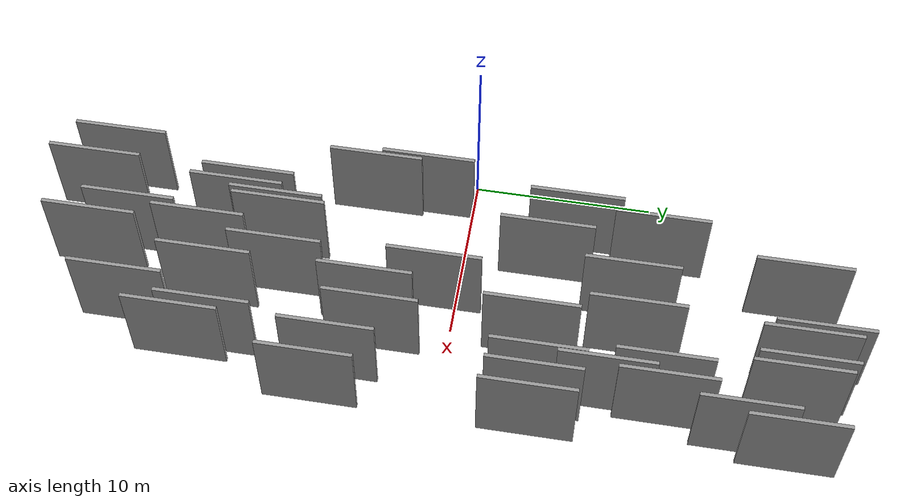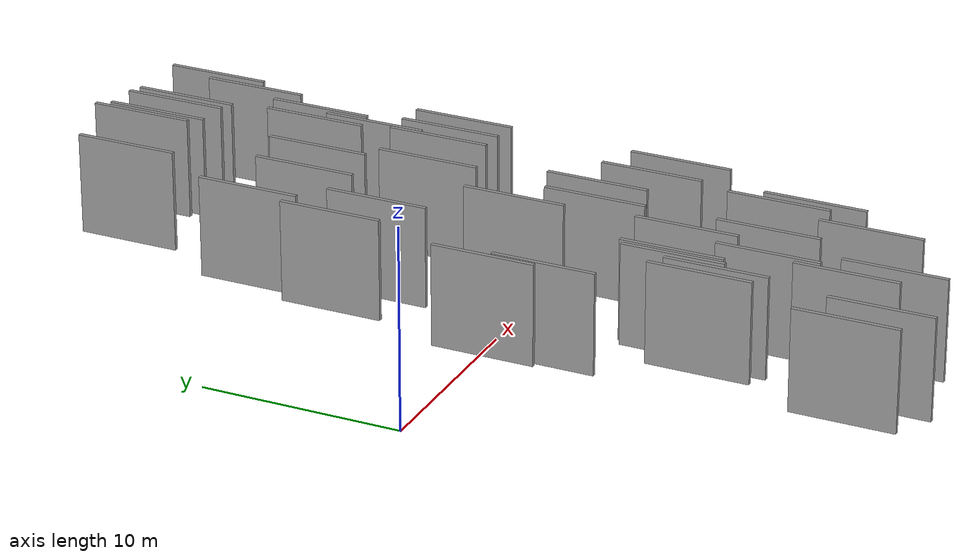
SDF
<sdf version="1.6">
 <world name="default">
  <scene>
   <sky><clouds><speed>12</speed></clouds></sky>
   <ambient>0.4 0.4 0.4 1</ambient>
   <background>0.7 0.7 0.7 1</background>
   <shadows>1</shadows>
  </scene>
  <gravity>0 0 -9.8066</gravity>
  <magnetic_field>6e-06 2.3e-05 -4.2e-05</magnetic_field>
  <physics default="0" name="default_physics" type="ode">
   <ode>
    <solver>
     <type>quick</type>
     <iters>10</iters>
     <sor>1.0</sor>
     <use_dynamic_moi_rescaling>0</use_dynamic_moi_rescaling>
    </solver>
    <constraints>
     <cfm>0</cfm>
     <erp>0.2</erp>
     <contact_max_correcting_vel>100</contact_max_correcting_vel>
     <contact_surface_layer>0.001</contact_surface_layer>
    </constraints>
   </ode>
   <max_step_size>0.004</max_step_size>
   <real_time_factor>1</real_time_factor>
   <real_time_update_rate>250</real_time_update_rate>
  </physics>
  <light name="sun" type="directional">
   <pose>0 0 10 0 0 0</pose>
   <diffuse>0.8 0.8 0.8 1</diffuse>
   <specular>0.2 0.2 0.2 1</specular>
   <attenuation>
    <range>1000</range>
    <constant>0.9</constant>
    <linear>0.01</linear>
    <quadratic>0.001</quadratic>
   </attenuation>
   <direction>-0.5 0.1 -0.9</direction>
  </light>
  <model name="grey_wall_1">
   <static>1</static>
   <pose>5.8081 10.5907 2.5 0.000000 0.000000 1.570796</pose>
   <link name="link">
    <pose>0 0 2.50 0 0 0</pose>
    <collision name="collision"><geometry><box><size>5.00 0.2 5.00</size></box></geometry></collision>
    <visual name="visual">
     <cast_shadows>0</cast_shadows>
     <geometry><box><size>5.00 0.2 5.00</size></box></geometry>
     <material>
      <script>
       <uri>model://grey_wall/materials/scripts</uri>
       <uri>model://grey_wall/materials/textures</uri>
       <name>vrc/grey_wall</name>
      </script>
     </material>
    </visual>
   </link>
  </model>
  <model name="grey_wall_2">
   <static>1</static>
   <pose>11.6229 18.5707 2.5 0.000000 0.000000 1.570796</pose>
   <link name="link">
    <pose>0 0 2.50 0 0 0</pose>
    <collision name="collision"><geometry><box><size>5.00 0.2 5.00</size></box></geometry></collision>
    <visual name="visual">
     <cast_shadows>0</cast_shadows>
     <geometry><box><size>5.00 0.2 5.00</size></box></geometry>
     <material>
      <script>
       <uri>model://grey_wall/materials/scripts</uri>
       <uri>model://grey_wall/materials/textures</uri>
       <name>vrc/grey_wall</name>
      </script>
     </material>
    </visual>
   </link>
  </model>
  <model name="grey_wall_3">
   <static>1</static>
   <pose>10.0517 -0.8519 2.5 0.000000 0.000000 1.570796</pose>
   <link name="link">
    <pose>0 0 2.50 0 0 0</pose>
    <collision name="collision"><geometry><box><size>5.00 0.2 5.00</size></box></geometry></collision>
    <visual name="visual">
     <cast_shadows>0</cast_shadows>
     <geometry><box><size>5.00 0.2 5.00</size></box></geometry>
     <material>
      <script>
       <uri>model://grey_wall/materials/scripts</uri>
       <uri>model://grey_wall/materials/textures</uri>
       <name>vrc/grey_wall</name>
      </script>
     </material>
    </visual>
   </link>
  </model>
  <model name="grey_wall_4">
   <static>1</static>
   <pose>11.1998 19.1837 2.5 0.000000 0.000000 1.570796</pose>
   <link name="link">
    <pose>0 0 2.50 0 0 0</pose>
    <collision name="collision"><geometry><box><size>5.00 0.2 5.00</size></box></geometry></collision>
    <visual name="visual">
     <cast_shadows>0</cast_shadows>
     <geometry><box><size>5.00 0.2 5.00</size></box></geometry>
     <material>
      <script>
       <uri>model://grey_wall/materials/scripts</uri>
       <uri>model://grey_wall/materials/textures</uri>
       <name>vrc/grey_wall</name>
      </script>
     </material>
    </visual>
   </link>
  </model>
  <model name="grey_wall_5">
   <static>1</static>
   <pose>7.8874 -9.5599 2.5 0.000000 0.000000 1.570796</pose>
   <link name="link">
    <pose>0 0 2.50 0 0 0</pose>
    <collision name="collision"><geometry><box><size>5.00 0.2 5.00</size></box></geometry></collision>
    <visual name="visual">
     <cast_shadows>0</cast_shadows>
     <geometry><box><size>5.00 0.2 5.00</size></box></geometry>
     <material>
      <script>
       <uri>model://grey_wall/materials/scripts</uri>
       <uri>model://grey_wall/materials/textures</uri>
       <name>vrc/grey_wall</name>
      </script>
     </material>
    </visual>
   </link>
  </model>
  <model name="grey_wall_6">
   <static>1</static>
   <pose>11.2592 9.8154 2.5 0.000000 0.000000 1.570796</pose>
   <link name="link">
    <pose>0 0 2.50 0 0 0</pose>
    <collision name="collision"><geometry><box><size>5.00 0.2 5.00</size></box></geometry></collision>
    <visual name="visual">
     <cast_shadows>0</cast_shadows>
     <geometry><box><size>5.00 0.2 5.00</size></box></geometry>
     <material>
      <script>
       <uri>model://grey_wall/materials/scripts</uri>
       <uri>model://grey_wall/materials/textures</uri>
       <name>vrc/grey_wall</name>
      </script>
     </material>
    </visual>
   </link>
  </model>
  <model name="grey_wall_7">
   <static>1</static>
   <pose>4.1478 -5.0018 2.5 0.000000 0.000000 1.570796</pose>
   <link name="link">
    <pose>0 0 2.50 0 0 0</pose>
    <collision name="collision"><geometry><box><size>5.00 0.2 5.00</size></box></geometry></collision>
    <visual name="visual">
     <cast_shadows>0</cast_shadows>
     <geometry><box><size>5.00 0.2 5.00</size></box></geometry>
     <material>
      <script>
       <uri>model://grey_wall/materials/scripts</uri>
       <uri>model://grey_wall/materials/textures</uri>
       <name>vrc/grey_wall</name>
      </script>
     </material>
    </visual>
   </link>
  </model>
  <model name="grey_wall_8">
   <static>1</static>
   <pose>9.3452 -13.5568 2.5 0.000000 0.000000 1.570796</pose>
   <link name="link">
    <pose>0 0 2.50 0 0 0</pose>
    <collision name="collision"><geometry><box><size>5.00 0.2 5.00</size></box></geometry></collision>
    <visual name="visual">
     <cast_shadows>0</cast_shadows>
     <geometry><box><size>5.00 0.2 5.00</size></box></geometry>
     <material>
      <script>
       <uri>model://grey_wall/materials/scripts</uri>
       <uri>model://grey_wall/materials/textures</uri>
       <name>vrc/grey_wall</name>
      </script>
     </material>
    </visual>
   </link>
  </model>
  <model name="grey_wall_9">
   <static>1</static>
   <pose>3.8382 -2.2054 2.5 0.000000 0.000000 1.570796</pose>
   <link name="link">
    <pose>0 0 2.50 0 0 0</pose>
    <collision name="collision"><geometry><box><size>5.00 0.2 5.00</size></box></geometry></collision>
    <visual name="visual">
     <cast_shadows>0</cast_shadows>
     <geometry><box><size>5.00 0.2 5.00</size></box></geometry>
     <material>
      <script>
       <uri>model://grey_wall/materials/scripts</uri>
       <uri>model://grey_wall/materials/textures</uri>
       <name>vrc/grey_wall</name>
      </script>
     </material>
    </visual>
   </link>
  </model>
  <model name="grey_wall_10">
   <static>1</static>
   <pose>6.9938 -12.0329 2.5 0.000000 0.000000 1.570796</pose>
   <link name="link">
    <pose>0 0 2.50 0 0 0</pose>
    <collision name="collision"><geometry><box><size>5.00 0.2 5.00</size></box></geometry></collision>
    <visual name="visual">
     <cast_shadows>0</cast_shadows>
     <geometry><box><size>5.00 0.2 5.00</size></box></geometry>
     <material>
      <script>
       <uri>model://grey_wall/materials/scripts</uri>
       <uri>model://grey_wall/materials/textures</uri>
       <name>vrc/grey_wall</name>
      </script>
     </material>
    </visual>
   </link>
  </model>
  <model name="grey_wall_11">
   <static>1</static>
   <pose>10.1374 -19.2209 2.5 0.000000 0.000000 1.570796</pose>
   <link name="link">
    <pose>0 0 2.50 0 0 0</pose>
    <collision name="collision"><geometry><box><size>5.00 0.2 5.00</size></box></geometry></collision>
    <visual name="visual">
     <cast_shadows>0</cast_shadows>
     <geometry><box><size>5.00 0.2 5.00</size></box></geometry>
     <material>
      <script>
       <uri>model://grey_wall/materials/scripts</uri>
       <uri>model://grey_wall/materials/textures</uri>
       <name>vrc/grey_wall</name>
      </script>
     </material>
    </visual>
   </link>
  </model>
  <model name="grey_wall_12">
   <static>1</static>
   <pose>14.6214 -11.9846 2.5 0.000000 0.000000 1.570796</pose>
   <link name="link">
    <pose>0 0 2.50 0 0 0</pose>
    <collision name="collision"><geometry><box><size>5.00 0.2 5.00</size></box></geometry></collision>
    <visual name="visual">
     <cast_shadows>0</cast_shadows>
     <geometry><box><size>5.00 0.2 5.00</size></box></geometry>
     <material>
      <script>
       <uri>model://grey_wall/materials/scripts</uri>
       <uri>model://grey_wall/materials/textures</uri>
       <name>vrc/grey_wall</name>
      </script>
     </material>
    </visual>
   </link>
  </model>
  <model name="grey_wall_13">
   <static>1</static>
   <pose>8.9719 9.3235 2.5 0.000000 0.000000 1.570796</pose>
   <link name="link">
    <pose>0 0 2.50 0 0 0</pose>
    <collision name="collision"><geometry><box><size>5.00 0.2 5.00</size></box></geometry></collision>
    <visual name="visual">
     <cast_shadows>0</cast_shadows>
     <geometry><box><size>5.00 0.2 5.00</size></box></geometry>
     <material>
      <script>
       <uri>model://grey_wall/materials/scripts</uri>
       <uri>model://grey_wall/materials/textures</uri>
       <name>vrc/grey_wall</name>
      </script>
     </material>
    </visual>
   </link>
  </model>
  <model name="grey_wall_14">
   <static>1</static>
   <pose>10.3752 -9.2281 2.5 0.000000 0.000000 1.570796</pose>
   <link name="link">
    <pose>0 0 2.50 0 0 0</pose>
    <collision name="collision"><geometry><box><size>5.00 0.2 5.00</size></box></geometry></collision>
    <visual name="visual">
     <cast_shadows>0</cast_shadows>
     <geometry><box><size>5.00 0.2 5.00</size></box></geometry>
     <material>
      <script>
       <uri>model://grey_wall/materials/scripts</uri>
       <uri>model://grey_wall/materials/textures</uri>
       <name>vrc/grey_wall</name>
      </script>
     </material>
    </visual>
   </link>
  </model>
  <model name="grey_wall_15">
   <static>1</static>
   <pose>13.7497 18.1765 2.5 0.000000 0.000000 1.570796</pose>
   <link name="link">
    <pose>0 0 2.50 0 0 0</pose>
    <collision name="collision"><geometry><box><size>5.00 0.2 5.00</size></box></geometry></collision>
    <visual name="visual">
     <cast_shadows>0</cast_shadows>
     <geometry><box><size>5.00 0.2 5.00</size></box></geometry>
     <material>
      <script>
       <uri>model://grey_wall/materials/scripts</uri>
       <uri>model://grey_wall/materials/textures</uri>
       <name>vrc/grey_wall</name>
      </script>
     </material>
    </visual>
   </link>
  </model>
  <model name="grey_wall_16">
   <static>1</static>
   <pose>4.6476 -19.0045 2.5 0.000000 0.000000 1.570796</pose>
   <link name="link">
    <pose>0 0 2.50 0 0 0</pose>
    <collision name="collision"><geometry><box><size>5.00 0.2 5.00</size></box></geometry></collision>
    <visual name="visual">
     <cast_shadows>0</cast_shadows>
     <geometry><box><size>5.00 0.2 5.00</size></box></geometry>
     <material>
      <script>
       <uri>model://grey_wall/materials/scripts</uri>
       <uri>model://grey_wall/materials/textures</uri>
       <name>vrc/grey_wall</name>
      </script>
     </material>
    </visual>
   </link>
  </model>
  <model name="grey_wall_17">
   <static>1</static>
   <pose>8.9086 -17.4246 2.5 0.000000 0.000000 1.570796</pose>
   <link name="link">
    <pose>0 0 2.50 0 0 0</pose>
    <collision name="collision"><geometry><box><size>5.00 0.2 5.00</size></box></geometry></collision>
    <visual name="visual">
     <cast_shadows>0</cast_shadows>
     <geometry><box><size>5.00 0.2 5.00</size></box></geometry>
     <material>
      <script>
       <uri>model://grey_wall/materials/scripts</uri>
       <uri>model://grey_wall/materials/textures</uri>
       <name>vrc/grey_wall</name>
      </script>
     </material>
    </visual>
   </link>
  </model>
  <model name="grey_wall_18">
   <static>1</static>
   <pose>6.2576 -11.5523 2.5 0.000000 0.000000 1.570796</pose>
   <link name="link">
    <pose>0 0 2.50 0 0 0</pose>
    <collision name="collision"><geometry><box><size>5.00 0.2 5.00</size></box></geometry></collision>
    <visual name="visual">
     <cast_shadows>0</cast_shadows>
     <geometry><box><size>5.00 0.2 5.00</size></box></geometry>
     <material>
      <script>
       <uri>model://grey_wall/materials/scripts</uri>
       <uri>model://grey_wall/materials/textures</uri>
       <name>vrc/grey_wall</name>
      </script>
     </material>
    </visual>
   </link>
  </model>
  <model name="grey_wall_19">
   <static>1</static>
   <pose>11.5374 -4.2189 2.5 0.000000 0.000000 1.570796</pose>
   <link name="link">
    <pose>0 0 2.50 0 0 0</pose>
    <collision name="collision"><geometry><box><size>5.00 0.2 5.00</size></box></geometry></collision>
    <visual name="visual">
     <cast_shadows>0</cast_shadows>
     <geometry><box><size>5.00 0.2 5.00</size></box></geometry>
     <material>
      <script>
       <uri>model://grey_wall/materials/scripts</uri>
       <uri>model://grey_wall/materials/textures</uri>
       <name>vrc/grey_wall</name>
      </script>
     </material>
    </visual>
   </link>
  </model>
  <model name="grey_wall_20">
   <static>1</static>
   <pose>13.1738 18.4519 2.5 0.000000 0.000000 1.570796</pose>
   <link name="link">
    <pose>0 0 2.50 0 0 0</pose>
    <collision name="collision"><geometry><box><size>5.00 0.2 5.00</size></box></geometry></collision>
    <visual name="visual">
     <cast_shadows>0</cast_shadows>
     <geometry><box><size>5.00 0.2 5.00</size></box></geometry>
     <material>
      <script>
       <uri>model://grey_wall/materials/scripts</uri>
       <uri>model://grey_wall/materials/textures</uri>
       <name>vrc/grey_wall</name>
      </script>
     </material>
    </visual>
   </link>
  </model>
  <model name="grey_wall_21">
   <static>1</static>
   <pose>13.5030 -16.8504 2.5 0.000000 0.000000 1.570796</pose>
   <link name="link">
    <pose>0 0 2.50 0 0 0</pose>
    <collision name="collision"><geometry><box><size>5.00 0.2 5.00</size></box></geometry></collision>
    <visual name="visual">
     <cast_shadows>0</cast_shadows>
     <geometry><box><size>5.00 0.2 5.00</size></box></geometry>
     <material>
      <script>
       <uri>model://grey_wall/materials/scripts</uri>
       <uri>model://grey_wall/materials/textures</uri>
       <name>vrc/grey_wall</name>
      </script>
     </material>
    </visual>
   </link>
  </model>
  <model name="grey_wall_22">
   <static>1</static>
   <pose>15.1513 -5.4892 2.5 0.000000 0.000000 1.570796</pose>
   <link name="link">
    <pose>0 0 2.50 0 0 0</pose>
    <collision name="collision"><geometry><box><size>5.00 0.2 5.00</size></box></geometry></collision>
    <visual name="visual">
     <cast_shadows>0</cast_shadows>
     <geometry><box><size>5.00 0.2 5.00</size></box></geometry>
     <material>
      <script>
       <uri>model://grey_wall/materials/scripts</uri>
       <uri>model://grey_wall/materials/textures</uri>
       <name>vrc/grey_wall</name>
      </script>
     </material>
    </visual>
   </link>
  </model>
  <model name="grey_wall_23">
   <static>1</static>
   <pose>14.1581 11.4555 2.5 0.000000 0.000000 1.570796</pose>
   <link name="link">
    <pose>0 0 2.50 0 0 0</pose>
    <collision name="collision"><geometry><box><size>5.00 0.2 5.00</size></box></geometry></collision>
    <visual name="visual">
     <cast_shadows>0</cast_shadows>
     <geometry><box><size>5.00 0.2 5.00</size></box></geometry>
     <material>
      <script>
       <uri>model://grey_wall/materials/scripts</uri>
       <uri>model://grey_wall/materials/textures</uri>
       <name>vrc/grey_wall</name>
      </script>
     </material>
    </visual>
   </link>
  </model>
  <model name="grey_wall_24">
   <static>1</static>
   <pose>7.6390 17.9997 2.5 0.000000 0.000000 1.570796</pose>
   <link name="link">
    <pose>0 0 2.50 0 0 0</pose>
    <collision name="collision"><geometry><box><size>5.00 0.2 5.00</size></box></geometry></collision>
    <visual name="visual">
     <cast_shadows>0</cast_shadows>
     <geometry><box><size>5.00 0.2 5.00</size></box></geometry>
     <material>
      <script>
       <uri>model://grey_wall/materials/scripts</uri>
       <uri>model://grey_wall/materials/textures</uri>
       <name>vrc/grey_wall</name>
      </script>
     </material>
    </visual>
   </link>
  </model>
  <model name="grey_wall_25">
   <static>1</static>
   <pose>14.5989 5.1652 2.5 0.000000 0.000000 1.570796</pose>
   <link name="link">
    <pose>0 0 2.50 0 0 0</pose>
    <collision name="collision"><geometry><box><size>5.00 0.2 5.00</size></box></geometry></collision>
    <visual name="visual">
     <cast_shadows>0</cast_shadows>
     <geometry><box><size>5.00 0.2 5.00</size></box></geometry>
     <material>
      <script>
       <uri>model://grey_wall/materials/scripts</uri>
       <uri>model://grey_wall/materials/textures</uri>
       <name>vrc/grey_wall</name>
      </script>
     </material>
    </visual>
   </link>
  </model>
  <model name="grey_wall_26">
   <static>1</static>
   <pose>7.1387 4.6802 2.5 0.000000 0.000000 1.570796</pose>
   <link name="link">
    <pose>0 0 2.50 0 0 0</pose>
    <collision name="collision"><geometry><box><size>5.00 0.2 5.00</size></box></geometry></collision>
    <visual name="visual">
     <cast_shadows>0</cast_shadows>
     <geometry><box><size>5.00 0.2 5.00</size></box></geometry>
     <material>
      <script>
       <uri>model://grey_wall/materials/scripts</uri>
       <uri>model://grey_wall/materials/textures</uri>
       <name>vrc/grey_wall</name>
      </script>
     </material>
    </visual>
   </link>
  </model>
  <model name="grey_wall_27">
   <static>1</static>
   <pose>16.8390 -6.2396 2.5 0.000000 0.000000 1.570796</pose>
   <link name="link">
    <pose>0 0 2.50 0 0 0</pose>
    <collision name="collision"><geometry><box><size>5.00 0.2 5.00</size></box></geometry></collision>
    <visual name="visual">
     <cast_shadows>0</cast_shadows>
     <geometry><box><size>5.00 0.2 5.00</size></box></geometry>
     <material>
      <script>
       <uri>model://grey_wall/materials/scripts</uri>
       <uri>model://grey_wall/materials/textures</uri>
       <name>vrc/grey_wall</name>
      </script>
     </material>
    </visual>
   </link>
  </model>
  <model name="grey_wall_28">
   <static>1</static>
   <pose>6.3550 -19.9841 2.5 0.000000 0.000000 1.570796</pose>
   <link name="link">
    <pose>0 0 2.50 0 0 0</pose>
    <collision name="collision"><geometry><box><size>5.00 0.2 5.00</size></box></geometry></collision>
    <visual name="visual">
     <cast_shadows>0</cast_shadows>
     <geometry><box><size>5.00 0.2 5.00</size></box></geometry>
     <material>
      <script>
       <uri>model://grey_wall/materials/scripts</uri>
       <uri>model://grey_wall/materials/textures</uri>
       <name>vrc/grey_wall</name>
      </script>
     </material>
    </visual>
   </link>
  </model>
  <model name="grey_wall_29">
   <static>1</static>
   <pose>15.7301 5.1016 2.5 0.000000 0.000000 1.570796</pose>
   <link name="link">
    <pose>0 0 2.50 0 0 0</pose>
    <collision name="collision"><geometry><box><size>5.00 0.2 5.00</size></box></geometry></collision>
    <visual name="visual">
     <cast_shadows>0</cast_shadows>
     <geometry><box><size>5.00 0.2 5.00</size></box></geometry>
     <material>
      <script>
       <uri>model://grey_wall/materials/scripts</uri>
       <uri>model://grey_wall/materials/textures</uri>
       <name>vrc/grey_wall</name>
      </script>
     </material>
    </visual>
   </link>
  </model>
  <model name="grey_wall_30">
   <static>1</static>
   <pose>11.6366 -12.6639 2.5 0.000000 0.000000 1.570796</pose>
   <link name="link">
    <pose>0 0 2.50 0 0 0</pose>
    <collision name="collision"><geometry><box><size>5.00 0.2 5.00</size></box></geometry></collision>
    <visual name="visual">
     <cast_shadows>0</cast_shadows>
     <geometry><box><size>5.00 0.2 5.00</size></box></geometry>
     <material>
      <script>
       <uri>model://grey_wall/materials/scripts</uri>
       <uri>model://grey_wall/materials/textures</uri>
       <name>vrc/grey_wall</name>
      </script>
     </material>
    </visual>
   </link>
  </model>
  <model name="grey_wall_31">
   <static>1</static>
   <pose>14.8103 8.6397 2.5 0.000000 0.000000 1.570796</pose>
   <link name="link">
    <pose>0 0 2.50 0 0 0</pose>
    <collision name="collision"><geometry><box><size>5.00 0.2 5.00</size></box></geometry></collision>
    <visual name="visual">
     <cast_shadows>0</cast_shadows>
     <geometry><box><size>5.00 0.2 5.00</size></box></geometry>
     <material>
      <script>
       <uri>model://grey_wall/materials/scripts</uri>
       <uri>model://grey_wall/materials/textures</uri>
       <name>vrc/grey_wall</name>
      </script>
     </material>
    </visual>
   </link>
  </model>
  <model name="grey_wall_32">
   <static>1</static>
   <pose>12.1252 4.5123 2.5 0.000000 0.000000 1.570796</pose>
   <link name="link">
    <pose>0 0 2.50 0 0 0</pose>
    <collision name="collision"><geometry><box><size>5.00 0.2 5.00</size></box></geometry></collision>
    <visual name="visual">
     <cast_shadows>0</cast_shadows>
     <geometry><box><size>5.00 0.2 5.00</size></box></geometry>
     <material>
      <script>
       <uri>model://grey_wall/materials/scripts</uri>
       <uri>model://grey_wall/materials/textures</uri>
       <name>vrc/grey_wall</name>
      </script>
     </material>
    </visual>
   </link>
  </model>
  <model name="grey_wall_33">
   <static>1</static>
   <pose>15.2330 11.7071 2.5 0.000000 0.000000 1.570796</pose>
   <link name="link">
    <pose>0 0 2.50 0 0 0</pose>
    <collision name="collision"><geometry><box><size>5.00 0.2 5.00</size></box></geometry></collision>
    <visual name="visual">
     <cast_shadows>0</cast_shadows>
     <geometry><box><size>5.00 0.2 5.00</size></box></geometry>
     <material>
      <script>
       <uri>model://grey_wall/materials/scripts</uri>
       <uri>model://grey_wall/materials/textures</uri>
       <name>vrc/grey_wall</name>
      </script>
     </material>
    </visual>
   </link>
  </model>
  <model name="grey_wall_34">
   <static>1</static>
   <pose>13.1419 -3.6338 2.5 0.000000 0.000000 1.570796</pose>
   <link name="link">
    <pose>0 0 2.50 0 0 0</pose>
    <collision name="collision"><geometry><box><size>5.00 0.2 5.00</size></box></geometry></collision>
    <visual name="visual">
     <cast_shadows>0</cast_shadows>
     <geometry><box><size>5.00 0.2 5.00</size></box></geometry>
     <material>
      <script>
       <uri>model://grey_wall/materials/scripts</uri>
       <uri>model://grey_wall/materials/textures</uri>
       <name>vrc/grey_wall</name>
      </script>
     </material>
    </visual>
   </link>
  </model>
  <model name="grey_wall_35">
   <static>1</static>
   <pose>16.9671 4.9523 2.5 0.000000 0.000000 1.570796</pose>
   <link name="link">
    <pose>0 0 2.50 0 0 0</pose>
    <collision name="collision"><geometry><box><size>5.00 0.2 5.00</size></box></geometry></collision>
    <visual name="visual">
     <cast_shadows>0</cast_shadows>
     <geometry><box><size>5.00 0.2 5.00</size></box></geometry>
     <material>
      <script>
       <uri>model://grey_wall/materials/scripts</uri>
       <uri>model://grey_wall/materials/textures</uri>
       <name>vrc/grey_wall</name>
      </script>
     </material>
    </visual>
   </link>
  </model>
  <model name="grey_wall_36">
   <static>1</static>
   <pose>7.4927 -9.7757 2.5 0.000000 0.000000 1.570796</pose>
   <link name="link">
    <pose>0 0 2.50 0 0 0</pose>
    <collision name="collision"><geometry><box><size>5.00 0.2 5.00</size></box></geometry></collision>
    <visual name="visual">
     <cast_shadows>0</cast_shadows>
     <geometry><box><size>5.00 0.2 5.00</size></box></geometry>
     <material>
      <script>
       <uri>model://grey_wall/materials/scripts</uri>
       <uri>model://grey_wall/materials/textures</uri>
       <name>vrc/grey_wall</name>
      </script>
     </material>
    </visual>
   </link>
  </model>
  <model name="grey_wall_37">
   <static>1</static>
   <pose>16.1752 15.7163 2.5 0.000000 0.000000 1.570796</pose>
   <link name="link">
    <pose>0 0 2.50 0 0 0</pose>
    <collision name="collision"><geometry><box><size>5.00 0.2 5.00</size></box></geometry></collision>
    <visual name="visual">
     <cast_shadows>0</cast_shadows>
     <geometry><box><size>5.00 0.2 5.00</size></box></geometry>
     <material>
      <script>
       <uri>model://grey_wall/materials/scripts</uri>
       <uri>model://grey_wall/materials/textures</uri>
       <name>vrc/grey_wall</name>
      </script>
     </material>
    </visual>
   </link>
  </model>
  <model name="grey_wall_38">
   <static>1</static>
   <pose>16.8327 18.0989 2.5 0.000000 0.000000 1.570796</pose>
   <link name="link">
    <pose>0 0 2.50 0 0 0</pose>
    <collision name="collision"><geometry><box><size>5.00 0.2 5.00</size></box></geometry></collision>
    <visual name="visual">
     <cast_shadows>0</cast_shadows>
     <geometry><box><size>5.00 0.2 5.00</size></box></geometry>
     <material>
      <script>
       <uri>model://grey_wall/materials/scripts</uri>
       <uri>model://grey_wall/materials/textures</uri>
       <name>vrc/grey_wall</name>
      </script>
     </material>
    </visual>
   </link>
  </model>
  <model name="grey_wall_39">
   <static>1</static>
   <pose>15.2389 -13.5103 2.5 0.000000 0.000000 1.570796</pose>
   <link name="link">
    <pose>0 0 2.50 0 0 0</pose>
    <collision name="collision"><geometry><box><size>5.00 0.2 5.00</size></box></geometry></collision>
    <visual name="visual">
     <cast_shadows>0</cast_shadows>
     <geometry><box><size>5.00 0.2 5.00</size></box></geometry>
     <material>
      <script>
       <uri>model://grey_wall/materials/scripts</uri>
       <uri>model://grey_wall/materials/textures</uri>
       <name>vrc/grey_wall</name>
      </script>
     </material>
    </visual>
   </link>
  </model>
  <model name="grey_wall_40">
   <static>1</static>
   <pose>5.0536 5.9921 2.5 0.000000 0.000000 1.570796</pose>
   <link name="link">
    <pose>0 0 2.50 0 0 0</pose>
    <collision name="collision"><geometry><box><size>5.00 0.2 5.00</size></box></geometry></collision>
    <visual name="visual">
     <cast_shadows>0</cast_shadows>
     <geometry><box><size>5.00 0.2 5.00</size></box></geometry>
     <material>
      <script>
       <uri>model://grey_wall/materials/scripts</uri>
       <uri>model://grey_wall/materials/textures</uri>
       <name>vrc/grey_wall</name>
      </script>
     </material>
    </visual>
   </link>
  </model>
 </world>
</sdf>
